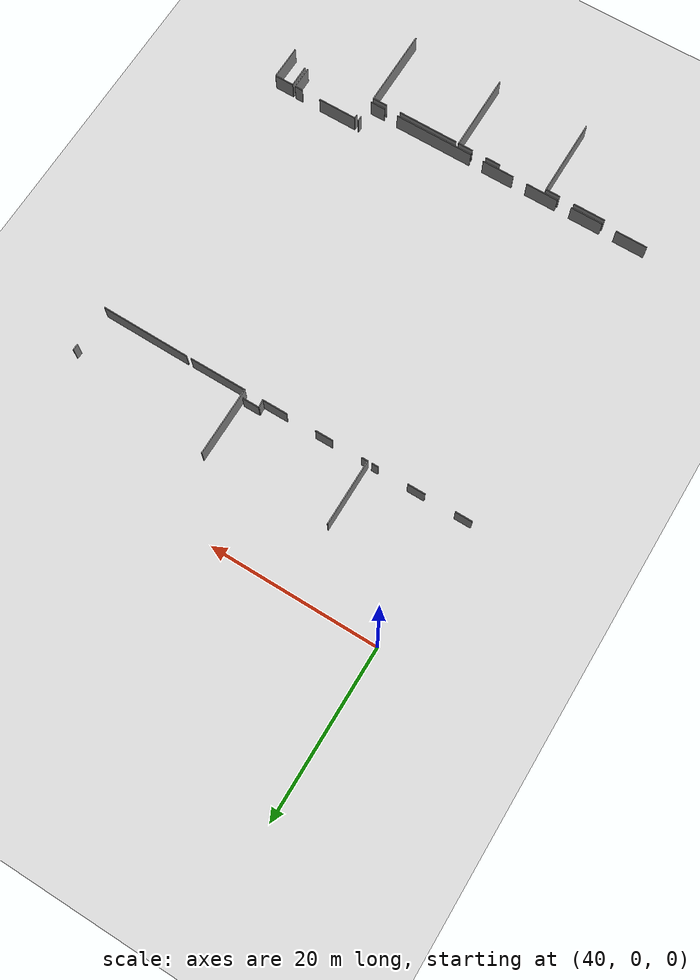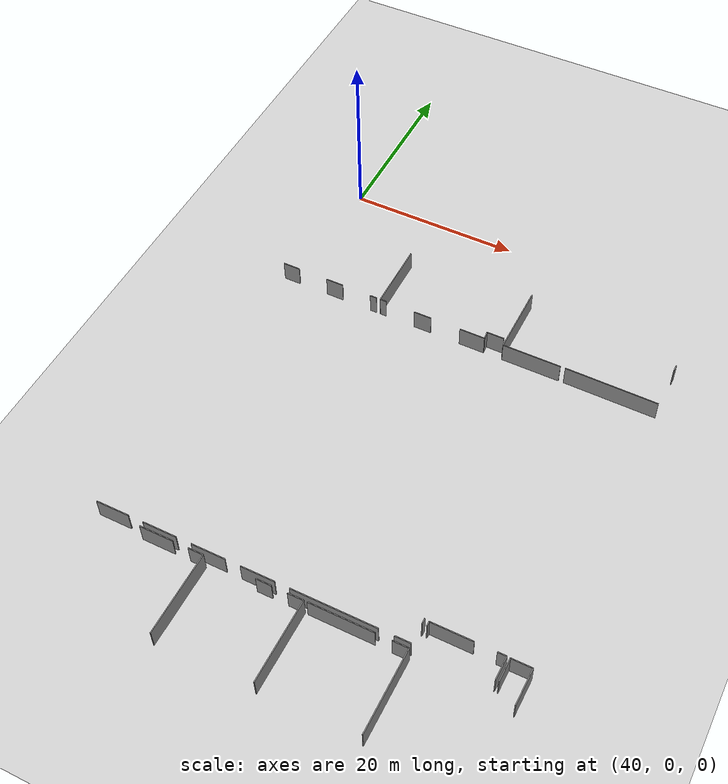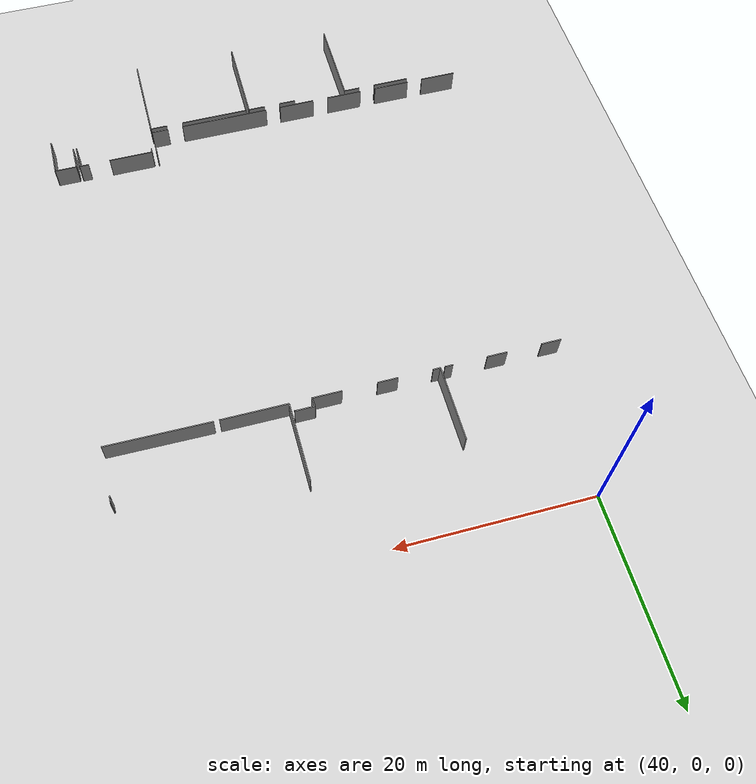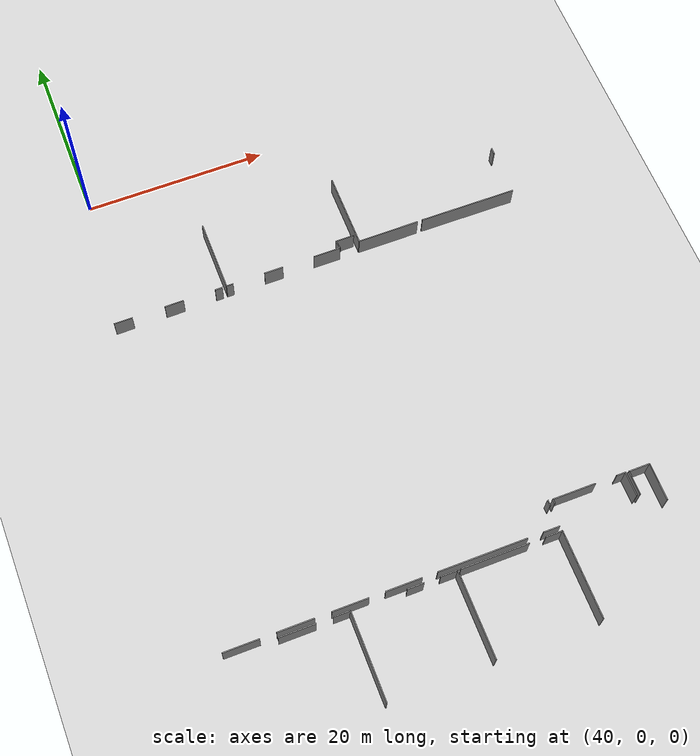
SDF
<sdf version="1.6">
 <world name="default">
  <model name="ground_plane">
   <static>1</static>
   <link name="link">
    <collision name="collision">
     <geometry><plane><normal>0 0 1</normal><size>100 100</size></plane></geometry>
     <surface><friction><ode><mu>100</mu><mu2>50</mu2></ode></friction></surface>
    </collision>
    <visual name="visual">
     <cast_shadows>0</cast_shadows>
     <geometry><plane><normal>0 0 1</normal><size>100 100</size></plane></geometry>
     <material>
      <script><uri>file://media/materials/scripts/gazebo.material</uri><name>Gazebo/Grey</name></script>
     </material>
    </visual>
   </link>
  </model>
  <model name="0510045905_A_40_1_103">
   <static>1</static>
   <link name="Wall_201">
    <collision name="Wall_201_Collision">
     <geometry><box><size>6.79352550396 0.1 2.5</size></box></geometry>
     <pose>3.39676275198 0 1.25 0 0 0</pose>
    </collision>
    <visual name="Wall_201_Visual">
     <pose>3.39676275198 0 1.25 0 0 0</pose>
     <geometry><box><size>6.79352550396 0.1 2.5</size></box></geometry>
     <material>
      <script><uri>file://media/materials/scripts/gazebo.material</uri><name>Gazebo/Grey</name></script>
      <ambient>1 1 1 1</ambient>
     </material>
    </visual>
    <pose>156.374942101 -77.9802414929 0 0 0 3.14159265359</pose>
   </link>
   <link name="Wall_202">
    <collision name="Wall_202_Collision">
     <geometry><box><size>8.21684866405 0.1 2.5</size></box></geometry>
     <pose>4.10842433202 0 1.25 0 0 0</pose>
    </collision>
    <visual name="Wall_202_Visual">
     <pose>4.10842433202 0 1.25 0 0 0</pose>
     <geometry><box><size>8.21684866405 0.1 2.5</size></box></geometry>
     <material>
      <script><uri>file://media/materials/scripts/gazebo.material</uri><name>Gazebo/Grey</name></script>
      <ambient>1 1 1 1</ambient>
     </material>
    </visual>
    <pose>149.581416597 -77.9802414929 0 0 0 1.57079632679</pose>
   </link>
   <link name="Wall_281">
    <collision name="Wall_281_Collision">
     <geometry><box><size>0.807598840124 0.1 2.5</size></box></geometry>
     <pose>0.403799420062 0 1.25 0 0 0</pose>
    </collision>
    <visual name="Wall_281_Visual">
     <pose>0.403799420062 0 1.25 0 0 0</pose>
     <geometry><box><size>0.807598840124 0.1 2.5</size></box></geometry>
     <material>
      <script><uri>file://media/materials/scripts/gazebo.material</uri><name>Gazebo/Grey</name></script>
      <ambient>1 1 1 1</ambient>
     </material>
    </visual>
    <pose>133.970546246 -78.0170428228 0 0 0 3.14159265359</pose>
   </link>
   <link name="Wall_282">
    <collision name="Wall_282_Collision">
     <geometry><box><size>2.08194006459 0.1 2.5</size></box></geometry>
     <pose>1.0409700323 0 1.25 0 0 0</pose>
    </collision>
    <visual name="Wall_282_Visual">
     <pose>1.0409700323 0 1.25 0 0 0</pose>
     <geometry><box><size>2.08194006459 0.1 2.5</size></box></geometry>
     <material>
      <script><uri>file://media/materials/scripts/gazebo.material</uri><name>Gazebo/Grey</name></script>
      <ambient>1 1 1 1</ambient>
     </material>
    </visual>
    <pose>129.629765931 -78.0170428228 0 0 0 3.14159265359</pose>
   </link>
   <link name="Wall_283">
    <collision name="Wall_283_Collision">
     <geometry><box><size>2.00630698654 0.1 2.5</size></box></geometry>
     <pose>1.00315349327 0 1.25 0 0 0</pose>
    </collision>
    <visual name="Wall_283_Visual">
     <pose>1.00315349327 0 1.25 0 0 0</pose>
     <geometry><box><size>2.00630698654 0.1 2.5</size></box></geometry>
     <material>
      <script><uri>file://media/materials/scripts/gazebo.material</uri><name>Gazebo/Grey</name></script>
      <ambient>1 1 1 1</ambient>
     </material>
    </visual>
    <pose>123.964137738 -78.0170428228 0 0 0 3.14159265359</pose>
   </link>
   <link name="Wall_289">
    <collision name="Wall_289_Collision">
     <geometry><box><size>2.9935978376 0.1 2.5</size></box></geometry>
     <pose>1.4967989188 0 1.25 0 0 0</pose>
    </collision>
    <visual name="Wall_289_Visual">
     <pose>1.4967989188 0 1.25 0 0 0</pose>
     <geometry><box><size>2.9935978376 0.1 2.5</size></box></geometry>
     <material>
      <script><uri>file://media/materials/scripts/gazebo.material</uri><name>Gazebo/Grey</name></script>
      <ambient>1 1 1 1</ambient>
     </material>
    </visual>
    <pose>147.349225586 -78.0071445341 0 0 0 3.14159265359</pose>
   </link>
   <link name="Wall_290">
    <collision name="Wall_290_Collision">
     <geometry><box><size>2.07254938041 0.1 2.5</size></box></geometry>
     <pose>1.0362746902 0 1.25 0 0 0</pose>
    </collision>
    <visual name="Wall_290_Visual">
     <pose>1.0362746902 0 1.25 0 0 0</pose>
     <geometry><box><size>2.07254938041 0.1 2.5</size></box></geometry>
     <material>
      <script><uri>file://media/materials/scripts/gazebo.material</uri><name>Gazebo/Grey</name></script>
      <ambient>1 1 1 1</ambient>
     </material>
    </visual>
    <pose>140.805187719 -78.0071445341 0 0 0 3.14159265359</pose>
   </link>
   <link name="Wall_291">
    <collision name="Wall_291_Collision">
     <geometry><box><size>0.744402073565 0.1 2.5</size></box></geometry>
     <pose>0.372201036782 0 1.25 0 0 0</pose>
    </collision>
    <visual name="Wall_291_Visual">
     <pose>0.372201036782 0 1.25 0 0 0</pose>
     <geometry><box><size>0.744402073565 0.1 2.5</size></box></geometry>
     <material>
      <script><uri>file://media/materials/scripts/gazebo.material</uri><name>Gazebo/Grey</name></script>
      <ambient>1 1 1 1</ambient>
     </material>
    </visual>
    <pose>135.181944506 -78.0071445341 0 0 0 3.14159265359</pose>
   </link>
   <link name="Wall_292">
    <collision name="Wall_292_Collision">
     <geometry><box><size>7.88918992659 0.1 2.5</size></box></geometry>
     <pose>3.94459496329 0 1.25 0 0 0</pose>
    </collision>
    <visual name="Wall_292_Visual">
     <pose>3.94459496329 0 1.25 0 0 0</pose>
     <geometry><box><size>7.88918992659 0.1 2.5</size></box></geometry>
     <material>
      <script><uri>file://media/materials/scripts/gazebo.material</uri><name>Gazebo/Grey</name></script>
      <ambient>1 1 1 1</ambient>
     </material>
    </visual>
    <pose>134.437542433 -78.0071445341 0 0 0 1.57079632679</pose>
   </link>
   <link name="Wall_296">
    <collision name="Wall_296_Collision">
     <geometry><box><size>2.01696668211 0.1 2.5</size></box></geometry>
     <pose>1.00848334105 0 1.25 0 0 0</pose>
    </collision>
    <visual name="Wall_296_Visual">
     <pose>1.00848334105 0 1.25 0 0 0</pose>
     <geometry><box><size>2.01696668211 0.1 2.5</size></box></geometry>
     <material>
      <script><uri>file://media/materials/scripts/gazebo.material</uri><name>Gazebo/Grey</name></script>
      <ambient>1 1 1 1</ambient>
     </material>
    </visual>
    <pose>149.277361472 -77.087111286 0 0 0 3.14159265359</pose>
   </link>
   <link name="Wall_297">
    <collision name="Wall_297_Collision">
     <geometry><box><size>0.924311683356 0.1 2.5</size></box></geometry>
     <pose>0.462155841678 0 1.25 0 0 0</pose>
    </collision>
    <visual name="Wall_297_Visual">
     <pose>0.462155841678 0 1.25 0 0 0</pose>
     <geometry><box><size>0.924311683356 0.1 2.5</size></box></geometry>
     <material>
      <script><uri>file://media/materials/scripts/gazebo.material</uri><name>Gazebo/Grey</name></script>
      <ambient>1 1 1 1</ambient>
     </material>
    </visual>
    <pose>147.260394789 -77.087111286 0 0 0 -1.47454296157</pose>
   </link>
   <link name="Wall_298">
    <collision name="Wall_298_Collision">
     <geometry><box><size>0.750239525897 0.1 2.5</size></box></geometry>
     <pose>0.375119762949 0 1.25 0 0 0</pose>
    </collision>
    <visual name="Wall_298_Visual">
     <pose>0.375119762949 0 1.25 0 0 0</pose>
     <geometry><box><size>0.750239525897 0.1 2.5</size></box></geometry>
     <material>
      <script><uri>file://media/materials/scripts/gazebo.material</uri><name>Gazebo/Grey</name></script>
      <ambient>1 1 1 1</ambient>
     </material>
    </visual>
    <pose>167.61406826 -73.0250058692 0 0 0 1.57079632679</pose>
   </link>
   <link name="Wall_304">
    <collision name="Wall_304_Collision">
     <geometry><box><size>10.6751010018 0.1 2.5</size></box></geometry>
     <pose>5.33755050089 0 1.25 0 0 0</pose>
    </collision>
    <visual name="Wall_304_Visual">
     <pose>5.33755050089 0 1.25 0 0 0</pose>
     <geometry><box><size>10.6751010018 0.1 2.5</size></box></geometry>
     <material>
      <script><uri>file://media/materials/scripts/gazebo.material</uri><name>Gazebo/Grey</name></script>
      <ambient>1 1 1 1</ambient>
     </material>
    </visual>
    <pose>156.939398362 -77.9609525199 0 0 0 -0.00898713291108</pose>
   </link>
   <link name="Wall_398">
    <collision name="Wall_398_Collision">
     <geometry><box><size>0.623084585953 0.1 2.5</size></box></geometry>
     <pose>0.311542292977 0 1.25 0 0 0</pose>
    </collision>
    <visual name="Wall_398_Visual">
     <pose>0.311542292977 0 1.25 0 0 0</pose>
     <geometry><box><size>0.623084585953 0.1 2.5</size></box></geometry>
     <material>
      <script><uri>file://media/materials/scripts/gazebo.material</uri><name>Gazebo/Grey</name></script>
      <ambient>1 1 1 1</ambient>
     </material>
    </visual>
    <pose>156.336617958 -111.906753044 0 0 0 -1.57079632679</pose>
   </link>
   <link name="Wall_399">
    <collision name="Wall_399_Collision">
     <geometry><box><size>1.77712353191 0.1 2.5</size></box></geometry>
     <pose>0.888561765956 0 1.25 0 0 0</pose>
    </collision>
    <visual name="Wall_399_Visual">
     <pose>0.888561765956 0 1.25 0 0 0</pose>
     <geometry><box><size>1.77712353191 0.1 2.5</size></box></geometry>
     <material>
      <script><uri>file://media/materials/scripts/gazebo.material</uri><name>Gazebo/Grey</name></script>
      <ambient>1 1 1 1</ambient>
     </material>
    </visual>
    <pose>156.336617958 -114.787408869 0 0 0 3.14159265359</pose>
   </link>
   <link name="Wall_400">
    <collision name="Wall_400_Collision">
     <geometry><box><size>9.59550262368 0.1 2.5</size></box></geometry>
     <pose>4.79775131184 0 1.25 0 0 0</pose>
    </collision>
    <visual name="Wall_400_Visual">
     <pose>4.79775131184 0 1.25 0 0 0</pose>
     <geometry><box><size>9.59550262368 0.1 2.5</size></box></geometry>
     <material>
      <script><uri>file://media/materials/scripts/gazebo.material</uri><name>Gazebo/Grey</name></script>
      <ambient>1 1 1 1</ambient>
     </material>
    </visual>
    <pose>152.90800302 -114.787408869 0 0 0 3.14159265359</pose>
   </link>
   <link name="Wall_401">
    <collision name="Wall_401_Collision">
     <geometry><box><size>3.85779458513 0.1 2.5</size></box></geometry>
     <pose>1.92889729256 0 1.25 0 0 0</pose>
    </collision>
    <visual name="Wall_401_Visual">
     <pose>1.92889729256 0 1.25 0 0 0</pose>
     <geometry><box><size>3.85779458513 0.1 2.5</size></box></geometry>
     <material>
      <script><uri>file://media/materials/scripts/gazebo.material</uri><name>Gazebo/Grey</name></script>
      <ambient>1 1 1 1</ambient>
     </material>
    </visual>
    <pose>141.69324188 -114.787408869 0 0 0 3.14159265359</pose>
   </link>
   <link name="Wall_402">
    <collision name="Wall_402_Collision">
     <geometry><box><size>3.8745455353 0.1 2.5</size></box></geometry>
     <pose>1.93727276765 0 1.25 0 0 0</pose>
    </collision>
    <visual name="Wall_402_Visual">
     <pose>1.93727276765 0 1.25 0 0 0</pose>
     <geometry><box><size>3.8745455353 0.1 2.5</size></box></geometry>
     <material>
      <script><uri>file://media/materials/scripts/gazebo.material</uri><name>Gazebo/Grey</name></script>
      <ambient>1 1 1 1</ambient>
     </material>
    </visual>
    <pose>136.130149807 -114.787408869 0 0 0 3.14159265359</pose>
   </link>
   <link name="Wall_403">
    <collision name="Wall_403_Collision">
     <geometry><box><size>3.88901226499 0.1 2.5</size></box></geometry>
     <pose>1.9445061325 0 1.25 0 0 0</pose>
    </collision>
    <visual name="Wall_403_Visual">
     <pose>1.9445061325 0 1.25 0 0 0</pose>
     <geometry><box><size>3.88901226499 0.1 2.5</size></box></geometry>
     <material>
      <script><uri>file://media/materials/scripts/gazebo.material</uri><name>Gazebo/Grey</name></script>
      <ambient>1 1 1 1</ambient>
     </material>
    </visual>
    <pose>130.51426686 -114.787408869 0 0 0 3.14159265359</pose>
   </link>
   <link name="Wall_404">
    <collision name="Wall_404_Collision">
     <geometry><box><size>3.8209932552 0.1 2.5</size></box></geometry>
     <pose>1.9104966276 0 1.25 0 0 0</pose>
    </collision>
    <visual name="Wall_404_Visual">
     <pose>1.9104966276 0 1.25 0 0 0</pose>
     <geometry><box><size>3.8209932552 0.1 2.5</size></box></geometry>
     <material>
      <script><uri>file://media/materials/scripts/gazebo.material</uri><name>Gazebo/Grey</name></script>
      <ambient>1 1 1 1</ambient>
     </material>
    </visual>
    <pose>124.91691148 -114.787408869 0 0 0 3.14159265359</pose>
   </link>
   <link name="Wall_522">
    <collision name="Wall_522_Collision">
     <geometry><box><size>3.871499908 0.1 2.5</size></box></geometry>
     <pose>1.935749954 0 1.25 0 0 0</pose>
    </collision>
    <visual name="Wall_522_Visual">
     <pose>1.935749954 0 1.25 0 0 0</pose>
     <geometry><box><size>3.871499908 0.1 2.5</size></box></geometry>
     <material>
      <script><uri>file://media/materials/scripts/gazebo.material</uri><name>Gazebo/Grey</name></script>
      <ambient>1 1 1 1</ambient>
     </material>
    </visual>
    <pose>126.591245091 -115.31734802 0 0 0 0.0</pose>
   </link>
   <link name="Wall_523">
    <collision name="Wall_523_Collision">
     <geometry><box><size>1.75225090893 0.1 2.5</size></box></geometry>
     <pose>0.876125454465 0 1.25 0 0 0</pose>
    </collision>
    <visual name="Wall_523_Visual">
     <pose>0.876125454465 0 1.25 0 0 0</pose>
     <geometry><box><size>1.75225090893 0.1 2.5</size></box></geometry>
     <material>
      <script><uri>file://media/materials/scripts/gazebo.material</uri><name>Gazebo/Grey</name></script>
      <ambient>1 1 1 1</ambient>
     </material>
    </visual>
    <pose>132.231746858 -115.31734802 0 0 0 0.0</pose>
   </link>
   <link name="Wall_524">
    <collision name="Wall_524_Collision">
     <geometry><box><size>9.40592723984 0.1 2.5</size></box></geometry>
     <pose>4.70296361992 0 1.25 0 0 0</pose>
    </collision>
    <visual name="Wall_524_Visual">
     <pose>4.70296361992 0 1.25 0 0 0</pose>
     <geometry><box><size>9.40592723984 0.1 2.5</size></box></geometry>
     <material>
      <script><uri>file://media/materials/scripts/gazebo.material</uri><name>Gazebo/Grey</name></script>
      <ambient>1 1 1 1</ambient>
     </material>
    </visual>
    <pose>133.983997767 -115.31734802 0 0 0 -1.57257722076</pose>
   </link>
   <link name="Wall_530">
    <collision name="Wall_530_Collision">
     <geometry><box><size>1.76773284772 0.1 2.5</size></box></geometry>
     <pose>0.883866423862 0 1.25 0 0 0</pose>
    </collision>
    <visual name="Wall_530_Visual">
     <pose>0.883866423862 0 1.25 0 0 0</pose>
     <geometry><box><size>1.76773284772 0.1 2.5</size></box></geometry>
     <material>
      <script><uri>file://media/materials/scripts/gazebo.material</uri><name>Gazebo/Grey</name></script>
      <ambient>1 1 1 1</ambient>
     </material>
    </visual>
    <pose>139.874748577 -115.31734802 0 0 0 0.0</pose>
   </link>
   <link name="Wall_531">
    <collision name="Wall_531_Collision">
     <geometry><box><size>1.80224995717 0.1 2.5</size></box></geometry>
     <pose>0.901124978585 0 1.25 0 0 0</pose>
    </collision>
    <visual name="Wall_531_Visual">
     <pose>0.901124978585 0 1.25 0 0 0</pose>
     <geometry><box><size>1.80224995717 0.1 2.5</size></box></geometry>
     <material>
      <script><uri>file://media/materials/scripts/gazebo.material</uri><name>Gazebo/Grey</name></script>
      <ambient>1 1 1 1</ambient>
     </material>
    </visual>
    <pose>143.379250395 -115.31734802 0 0 0 0.0</pose>
   </link>
   <link name="Wall_532">
    <collision name="Wall_532_Collision">
     <geometry><box><size>9.35567401846 0.1 2.5</size></box></geometry>
     <pose>4.67783700923 0 1.25 0 0 0</pose>
    </collision>
    <visual name="Wall_532_Visual">
     <pose>4.67783700923 0 1.25 0 0 0</pose>
     <geometry><box><size>9.35567401846 0.1 2.5</size></box></geometry>
     <material>
      <script><uri>file://media/materials/scripts/gazebo.material</uri><name>Gazebo/Grey</name></script>
      <ambient>1 1 1 1</ambient>
     </material>
    </visual>
    <pose>145.181500352 -115.31734802 0 0 0 -1.57255965848</pose>
   </link>
   <link name="Wall_535">
    <collision name="Wall_535_Collision">
     <geometry><box><size>7.30950552972 0.1 2.5</size></box></geometry>
     <pose>3.65475276486 0 1.25 0 0 0</pose>
    </collision>
    <visual name="Wall_535_Visual">
     <pose>3.65475276486 0 1.25 0 0 0</pose>
     <geometry><box><size>7.30950552972 0.1 2.5</size></box></geometry>
     <material>
      <script><uri>file://media/materials/scripts/gazebo.material</uri><name>Gazebo/Grey</name></script>
      <ambient>1 1 1 1</ambient>
     </material>
    </visual>
    <pose>145.515250344 -115.311256765 0 0 0 0.0</pose>
   </link>
   <link name="Wall_536">
    <collision name="Wall_536_Collision">
     <geometry><box><size>1.78499140245 0.1 2.5</size></box></geometry>
     <pose>0.892495701224 0 1.25 0 0 0</pose>
    </collision>
    <visual name="Wall_536_Visual">
     <pose>0.892495701224 0 1.25 0 0 0</pose>
     <geometry><box><size>1.78499140245 0.1 2.5</size></box></geometry>
     <material>
      <script><uri>file://media/materials/scripts/gazebo.material</uri><name>Gazebo/Grey</name></script>
      <ambient>1 1 1 1</ambient>
     </material>
    </visual>
    <pose>154.588427885 -115.311256765 0 0 0 0.0</pose>
   </link>
   <link name="Wall_537">
    <collision name="Wall_537_Collision">
     <geometry><box><size>9.42318237666 0.1 2.5</size></box></geometry>
     <pose>4.71159118833 0 1.25 0 0 0</pose>
    </collision>
    <visual name="Wall_537_Visual">
     <pose>4.71159118833 0 1.25 0 0 0</pose>
     <geometry><box><size>9.42318237666 0.1 2.5</size></box></geometry>
     <material>
      <script><uri>file://media/materials/scripts/gazebo.material</uri><name>Gazebo/Grey</name></script>
      <ambient>1 1 1 1</ambient>
     </material>
    </visual>
    <pose>156.373419288 -115.311256765 0 0 0 -1.57235848885</pose>
   </link>
   <link name="Wall_540">
    <collision name="Wall_540_Collision">
     <geometry><box><size>0.479940102663 0.1 2.5</size></box></geometry>
     <pose>0.239970051332 0 1.25 0 0 0</pose>
    </collision>
    <visual name="Wall_540_Visual">
     <pose>0.239970051332 0 1.25 0 0 0</pose>
     <geometry><box><size>0.479940102663 0.1 2.5</size></box></geometry>
     <material>
      <script><uri>file://media/materials/scripts/gazebo.material</uri><name>Gazebo/Grey</name></script>
      <ambient>1 1 1 1</ambient>
     </material>
    </visual>
    <pose>156.849044752 -112.493543905 0 0 0 1.57079632679</pose>
   </link>
   <link name="Wall_541">
    <collision name="Wall_541_Collision">
     <geometry><box><size>4.6823981777 0.1 2.5</size></box></geometry>
     <pose>2.34119908885 0 1.25 0 0 0</pose>
    </collision>
    <visual name="Wall_541_Visual">
     <pose>2.34119908885 0 1.25 0 0 0</pose>
     <geometry><box><size>4.6823981777 0.1 2.5</size></box></geometry>
     <material>
      <script><uri>file://media/materials/scripts/gazebo.material</uri><name>Gazebo/Grey</name></script>
      <ambient>1 1 1 1</ambient>
     </material>
    </visual>
    <pose>156.849044752 -112.013603802 0 0 0 0.0</pose>
   </link>
   <link name="Wall_542">
    <collision name="Wall_542_Collision">
     <geometry><box><size>0.978661573701 0.1 2.5</size></box></geometry>
     <pose>0.489330786851 0 1.25 0 0 0</pose>
    </collision>
    <visual name="Wall_542_Visual">
     <pose>0.489330786851 0 1.25 0 0 0</pose>
     <geometry><box><size>0.978661573701 0.1 2.5</size></box></geometry>
     <material>
      <script><uri>file://media/materials/scripts/gazebo.material</uri><name>Gazebo/Grey</name></script>
      <ambient>1 1 1 1</ambient>
     </material>
    </visual>
    <pose>163.853733749 -112.013603802 0 0 0 0.0</pose>
   </link>
   <link name="Wall_543">
    <collision name="Wall_543_Collision">
     <geometry><box><size>2.63015297932 0.1 2.5</size></box></geometry>
     <pose>1.31507648966 0 1.25 0 0 0</pose>
    </collision>
    <visual name="Wall_543_Visual">
     <pose>1.31507648966 0 1.25 0 0 0</pose>
     <geometry><box><size>2.63015297932 0.1 2.5</size></box></geometry>
     <material>
      <script><uri>file://media/materials/scripts/gazebo.material</uri><name>Gazebo/Grey</name></script>
      <ambient>1 1 1 1</ambient>
     </material>
    </visual>
    <pose>164.832395322 -112.013603802 0 0 0 -1.57079632679</pose>
   </link>
   <link name="Wall_550">
    <collision name="Wall_550_Collision">
     <geometry><box><size>2.59944290401 0.1 2.5</size></box></geometry>
     <pose>1.299721452 0 1.25 0 0 0</pose>
    </collision>
    <visual name="Wall_550_Visual">
     <pose>1.299721452 0 1.25 0 0 0</pose>
     <geometry><box><size>2.59944290401 0.1 2.5</size></box></geometry>
     <material>
      <script><uri>file://media/materials/scripts/gazebo.material</uri><name>Gazebo/Grey</name></script>
      <ambient>1 1 1 1</ambient>
     </material>
    </visual>
    <pose>165.188226112 -114.648579025 0 0 0 1.57079632679</pose>
   </link>
   <link name="Wall_551">
    <collision name="Wall_551_Collision">
     <geometry><box><size>2.2969105918 0.1 2.5</size></box></geometry>
     <pose>1.1484552959 0 1.25 0 0 0</pose>
    </collision>
    <visual name="Wall_551_Visual">
     <pose>1.1484552959 0 1.25 0 0 0</pose>
     <geometry><box><size>2.2969105918 0.1 2.5</size></box></geometry>
     <material>
      <script><uri>file://media/materials/scripts/gazebo.material</uri><name>Gazebo/Grey</name></script>
      <ambient>1 1 1 1</ambient>
     </material>
    </visual>
    <pose>165.188226112 -112.049136121 0 0 0 0.0</pose>
   </link>
   <link name="Wall_552">
    <collision name="Wall_552_Collision">
     <geometry><box><size>4.07748837527 0.1 2.5</size></box></geometry>
     <pose>2.03874418764 0 1.25 0 0 0</pose>
    </collision>
    <visual name="Wall_552_Visual">
     <pose>2.03874418764 0 1.25 0 0 0</pose>
     <geometry><box><size>4.07748837527 0.1 2.5</size></box></geometry>
     <material>
      <script><uri>file://media/materials/scripts/gazebo.material</uri><name>Gazebo/Grey</name></script>
      <ambient>1 1 1 1</ambient>
     </material>
    </visual>
    <pose>167.485136704 -112.049136121 0 0 0 -1.57951070315</pose>
   </link>
   <pose>-83.8 62.4001624335 0 0 0 0</pose>
  </model>
 </world>
</sdf>
